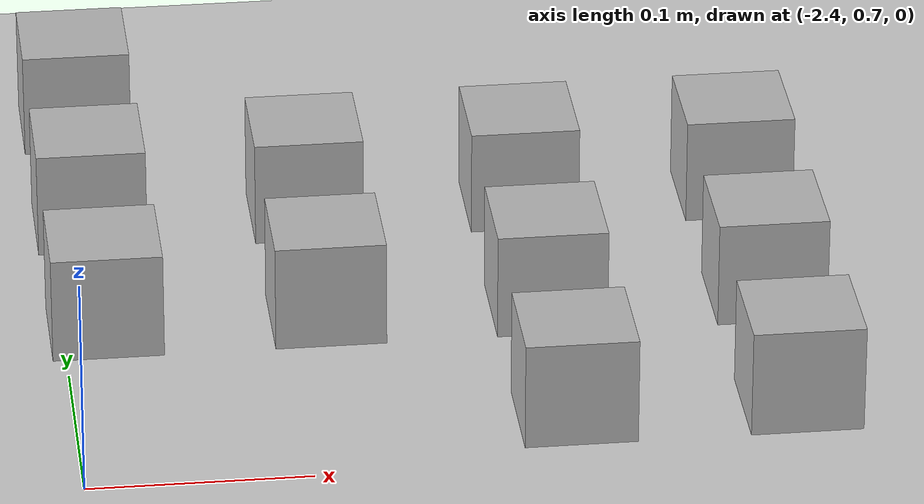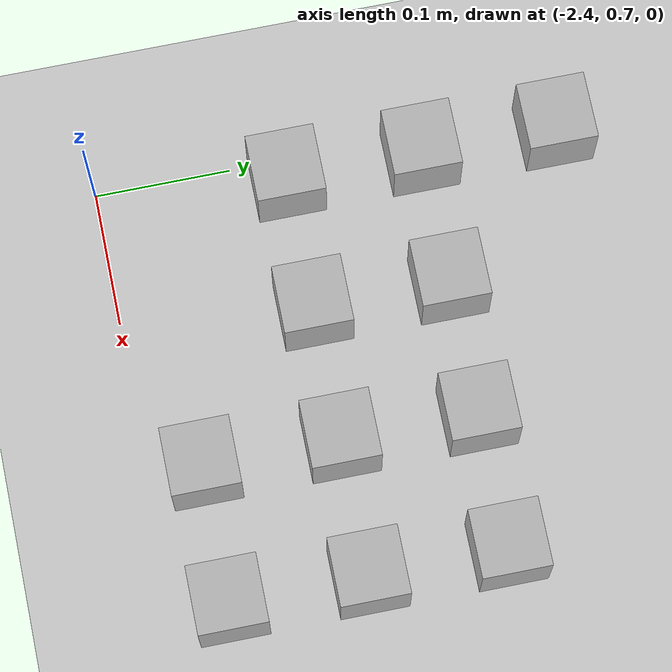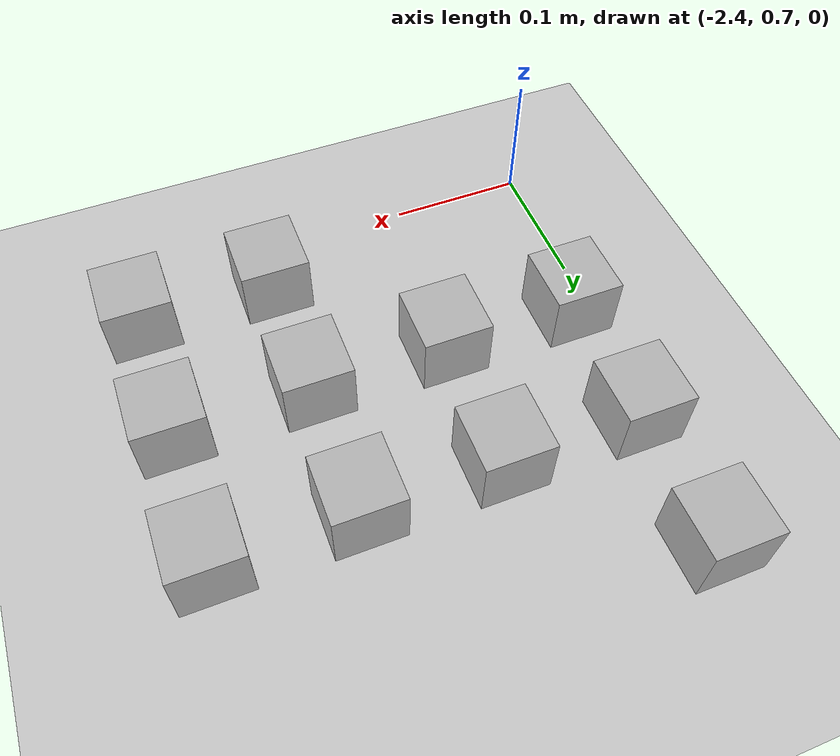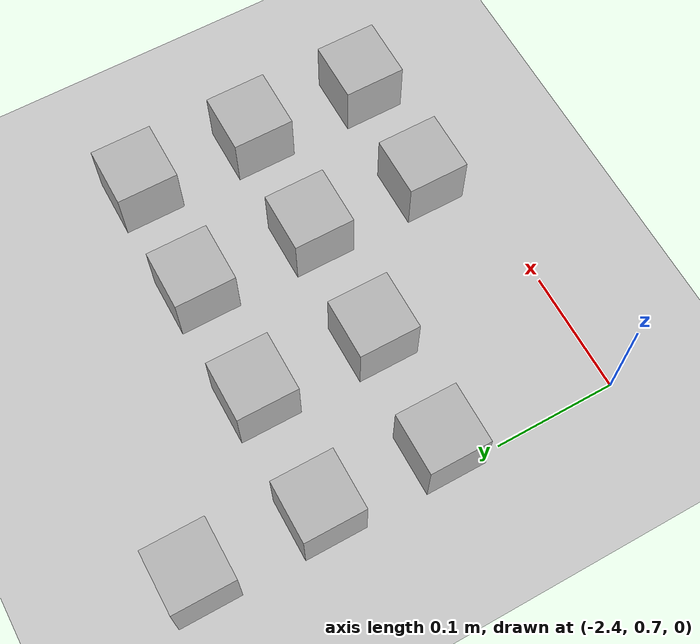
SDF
<sdf version="1.6">
 <world name="default">
  <model name="ground_plane">
   <static>1</static>
   <link name="link">
    <collision name="collision">
     <geometry><plane><normal>0 0 1</normal><size>100 100</size></plane></geometry>
     <surface><friction><ode><mu>100</mu><mu2>50</mu2></ode></friction></surface>
    </collision>
    <visual name="visual">
     <cast_shadows>0</cast_shadows>
     <geometry><plane><normal>0 0 1</normal><size>100 100</size></plane></geometry>
     <material>
      <script><uri>file://media/materials/scripts/gazebo.material</uri><name>Gazebo/Grey</name></script>
     </material>
    </visual>
   </link>
  </model>
  <model name="at2">
   <static>0</static>
   <link name="link">
    <inertial>
     <mass>0.01</mass>
     <inertia><ixx>4e-05</ixx><ixy>0</ixy><ixz>0</ixz><iyy>4e-05</iyy><iyz>0</iyz><izz>4e-05</izz></inertia>
    </inertial>
    <visual name="visual">
     <geometry><box><size>0.05 0.05 0.05</size></box></geometry>
     <material>
      <script>
       <uri>model://at0/materials/scripts</uri>
       <uri>model://at0/materials/textures</uri>
       <name>at0/Diffuse</name>
      </script>
     </material>
    </visual>
    <collision name="collision">
     <geometry><box><size>0.05 0.05 0.05</size></box></geometry>
     <surface><friction><ode><mu>0.8</mu><mu2>0.7</mu2></ode></friction></surface>
    </collision>
   </link>
   <pose>-2.18131 0.73932 0.025 0 -0 0</pose>
  </model>
  <model name="at3">
   <static>0</static>
   <link name="link">
    <inertial>
     <mass>0.01</mass>
     <inertia><ixx>4e-05</ixx><ixy>0</ixy><ixz>0</ixz><iyy>4e-05</iyy><iyz>0</iyz><izz>4e-05</izz></inertia>
    </inertial>
    <visual name="visual">
     <geometry><box><size>0.05 0.05 0.05</size></box></geometry>
     <material>
      <script>
       <uri>model://at0/materials/scripts</uri>
       <uri>model://at0/materials/textures</uri>
       <name>at0/Diffuse</name>
      </script>
     </material>
    </visual>
    <collision name="collision">
     <geometry><box><size>0.05 0.05 0.05</size></box></geometry>
     <surface><friction><ode><mu>0.8</mu><mu2>0.7</mu2></ode></friction></surface>
    </collision>
   </link>
   <pose>-2.08131 0.73932 0.025 0 -0 0</pose>
  </model>
  <model name="at8">
   <static>0</static>
   <link name="link">
    <inertial>
     <mass>0.01</mass>
     <inertia><ixx>4e-05</ixx><ixy>0</ixy><ixz>0</ixz><iyy>4e-05</iyy><iyz>0</iyz><izz>4e-05</izz></inertia>
    </inertial>
    <visual name="visual">
     <geometry><box><size>0.05 0.05 0.05</size></box></geometry>
     <material>
      <script>
       <uri>model://at0/materials/scripts</uri>
       <uri>model://at0/materials/textures</uri>
       <name>at0/Diffuse</name>
      </script>
     </material>
    </visual>
    <collision name="collision">
     <geometry><box><size>0.05 0.05 0.05</size></box></geometry>
     <surface><friction><ode><mu>0.8</mu><mu2>0.7</mu2></ode></friction></surface>
    </collision>
   </link>
   <pose>-2.38131 0.83932 0.025 0 -0 0</pose>
  </model>
  <model name="at9">
   <static>0</static>
   <link name="link">
    <inertial>
     <mass>0.01</mass>
     <inertia><ixx>4e-05</ixx><ixy>0</ixy><ixz>0</ixz><iyy>4e-05</iyy><iyz>0</iyz><izz>4e-05</izz></inertia>
    </inertial>
    <visual name="visual">
     <geometry><box><size>0.05 0.05 0.05</size></box></geometry>
     <material>
      <script>
       <uri>model://at0/materials/scripts</uri>
       <uri>model://at0/materials/textures</uri>
       <name>at0/Diffuse</name>
      </script>
     </material>
    </visual>
    <collision name="collision">
     <geometry><box><size>0.05 0.05 0.05</size></box></geometry>
     <surface><friction><ode><mu>0.8</mu><mu2>0.7</mu2></ode></friction></surface>
    </collision>
   </link>
   <pose>-2.28131 0.83932 0.025 0 -0 0</pose>
  </model>
  <model name="at10">
   <static>0</static>
   <link name="link">
    <inertial>
     <mass>0.01</mass>
     <inertia><ixx>4e-05</ixx><ixy>0</ixy><ixz>0</ixz><iyy>4e-05</iyy><iyz>0</iyz><izz>4e-05</izz></inertia>
    </inertial>
    <visual name="visual">
     <geometry><box><size>0.05 0.05 0.05</size></box></geometry>
     <material>
      <script>
       <uri>model://at0/materials/scripts</uri>
       <uri>model://at0/materials/textures</uri>
       <name>at0/Diffuse</name>
      </script>
     </material>
    </visual>
    <collision name="collision">
     <geometry><box><size>0.05 0.05 0.05</size></box></geometry>
     <surface><friction><ode><mu>0.8</mu><mu2>0.7</mu2></ode></friction></surface>
    </collision>
   </link>
   <pose>-2.18131 0.83932 0.025 0 -0 0</pose>
  </model>
  <model name="at11">
   <static>0</static>
   <link name="link">
    <inertial>
     <mass>0.01</mass>
     <inertia><ixx>4e-05</ixx><ixy>0</ixy><ixz>0</ixz><iyy>4e-05</iyy><iyz>0</iyz><izz>4e-05</izz></inertia>
    </inertial>
    <visual name="visual">
     <geometry><box><size>0.05 0.05 0.05</size></box></geometry>
     <material>
      <script>
       <uri>model://at0/materials/scripts</uri>
       <uri>model://at0/materials/textures</uri>
       <name>at0/Diffuse</name>
      </script>
     </material>
    </visual>
    <collision name="collision">
     <geometry><box><size>0.05 0.05 0.05</size></box></geometry>
     <surface><friction><ode><mu>0.8</mu><mu2>0.7</mu2></ode></friction></surface>
    </collision>
   </link>
   <pose>-2.08131 0.83932 0.025 0 -0 0</pose>
  </model>
  <model name="at16">
   <static>0</static>
   <link name="link">
    <inertial>
     <mass>0.01</mass>
     <inertia><ixx>4e-05</ixx><ixy>0</ixy><ixz>0</ixz><iyy>4e-05</iyy><iyz>0</iyz><izz>4e-05</izz></inertia>
    </inertial>
    <visual name="visual">
     <geometry><box><size>0.05 0.05 0.05</size></box></geometry>
     <material>
      <script>
       <uri>model://at0/materials/scripts</uri>
       <uri>model://at0/materials/textures</uri>
       <name>at0/Diffuse</name>
      </script>
     </material>
    </visual>
    <collision name="collision">
     <geometry><box><size>0.05 0.05 0.05</size></box></geometry>
     <surface><friction><ode><mu>0.8</mu><mu2>0.7</mu2></ode></friction></surface>
    </collision>
   </link>
   <pose>-2.38131 0.93932 0.025 0 -0 0</pose>
  </model>
  <model name="at17">
   <static>0</static>
   <link name="link">
    <inertial>
     <mass>0.01</mass>
     <inertia><ixx>4e-05</ixx><ixy>0</ixy><ixz>0</ixz><iyy>4e-05</iyy><iyz>0</iyz><izz>4e-05</izz></inertia>
    </inertial>
    <visual name="visual">
     <geometry><box><size>0.05 0.05 0.05</size></box></geometry>
     <material>
      <script>
       <uri>model://at0/materials/scripts</uri>
       <uri>model://at0/materials/textures</uri>
       <name>at0/Diffuse</name>
      </script>
     </material>
    </visual>
    <collision name="collision">
     <geometry><box><size>0.05 0.05 0.05</size></box></geometry>
     <surface><friction><ode><mu>0.8</mu><mu2>0.7</mu2></ode></friction></surface>
    </collision>
   </link>
   <pose>-2.28131 0.93932 0.025 0 -0 0</pose>
  </model>
  <model name="at18">
   <static>0</static>
   <link name="link">
    <inertial>
     <mass>0.01</mass>
     <inertia><ixx>4e-05</ixx><ixy>0</ixy><ixz>0</ixz><iyy>4e-05</iyy><iyz>0</iyz><izz>4e-05</izz></inertia>
    </inertial>
    <visual name="visual">
     <geometry><box><size>0.05 0.05 0.05</size></box></geometry>
     <material>
      <script>
       <uri>model://at0/materials/scripts</uri>
       <uri>model://at0/materials/textures</uri>
       <name>at0/Diffuse</name>
      </script>
     </material>
    </visual>
    <collision name="collision">
     <geometry><box><size>0.05 0.05 0.05</size></box></geometry>
     <surface><friction><ode><mu>0.8</mu><mu2>0.7</mu2></ode></friction></surface>
    </collision>
   </link>
   <pose>-2.18131 0.93932 0.025 0 -0 0</pose>
  </model>
  <model name="at19">
   <static>0</static>
   <link name="link">
    <inertial>
     <mass>0.01</mass>
     <inertia><ixx>4e-05</ixx><ixy>0</ixy><ixz>0</ixz><iyy>4e-05</iyy><iyz>0</iyz><izz>4e-05</izz></inertia>
    </inertial>
    <visual name="visual">
     <geometry><box><size>0.05 0.05 0.05</size></box></geometry>
     <material>
      <script>
       <uri>model://at0/materials/scripts</uri>
       <uri>model://at0/materials/textures</uri>
       <name>at0/Diffuse</name>
      </script>
     </material>
    </visual>
    <collision name="collision">
     <geometry><box><size>0.05 0.05 0.05</size></box></geometry>
     <surface><friction><ode><mu>0.8</mu><mu2>0.7</mu2></ode></friction></surface>
    </collision>
   </link>
   <pose>-2.08131 0.93932 0.025 0 -0 0</pose>
  </model>
  <model name="at24">
   <static>0</static>
   <link name="link">
    <inertial>
     <mass>0.01</mass>
     <inertia><ixx>4e-05</ixx><ixy>0</ixy><ixz>0</ixz><iyy>4e-05</iyy><iyz>0</iyz><izz>4e-05</izz></inertia>
    </inertial>
    <visual name="visual">
     <geometry><box><size>0.05 0.05 0.05</size></box></geometry>
     <material>
      <script>
       <uri>model://at0/materials/scripts</uri>
       <uri>model://at0/materials/textures</uri>
       <name>at0/Diffuse</name>
      </script>
     </material>
    </visual>
    <collision name="collision">
     <geometry><box><size>0.05 0.05 0.05</size></box></geometry>
     <surface><friction><ode><mu>0.8</mu><mu2>0.7</mu2></ode></friction></surface>
    </collision>
   </link>
   <pose>-2.38131 1.03932 0.025 0 -0 0</pose>
  </model>
 </world>
</sdf>
